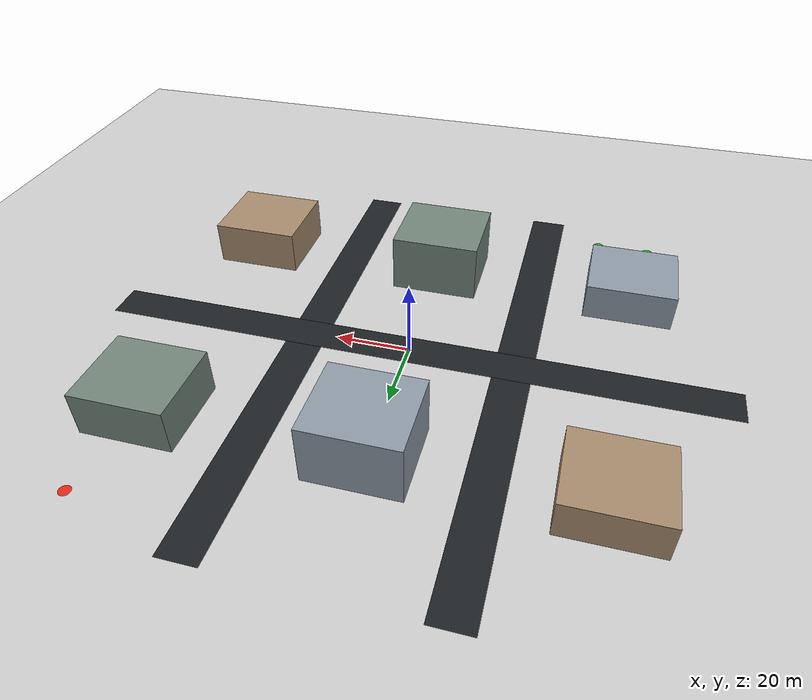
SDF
<?xml version="1.0"?>
<sdf version="1.6"><world name="outdoor_campus">
  <physics name="default_physics" type="ode"><max_step_size>0.004</max_step_size><real_time_factor>1</real_time_factor><real_time_update_rate>250</real_time_update_rate><magnetic_field>6.0e-6 2.3e-5 -4.2e-5</magnetic_field></physics>
  <gravity>0 0 -9.8066</gravity>
  <include><uri>model://sun</uri></include>
  <include><uri>model://ground_plane</uri></include>
  <spherical_coordinates><surface_model>EARTH_WGS84</surface_model><latitude_deg>47.397742</latitude_deg><longitude_deg>8.545594</longitude_deg><elevation>488</elevation><heading_deg>0</heading_deg></spherical_coordinates>
<model name="road_0"><static>true</static><pose>0.000 0.000 0.012 0.000 0.000 0.000</pose><link name="link"><visual name="visual"><cast_shadows>false</cast_shadows><geometry><box><size>170 10 0.02</size></box></geometry><material><ambient>0.12 0.13 0.14 1</ambient><diffuse>0.12 0.13 0.14 1</diffuse></material></visual></link></model>
<model name="road_1"><static>true</static><pose>-28.000 0.000 0.012 0.000 0.000 0.000</pose><link name="link"><visual name="visual"><cast_shadows>false</cast_shadows><geometry><box><size>10 150 0.02</size></box></geometry><material><ambient>0.12 0.13 0.14 1</ambient><diffuse>0.12 0.13 0.14 1</diffuse></material></visual></link></model>
<model name="road_2"><static>true</static><pose>28.000 0.000 0.012 0.000 0.000 0.000</pose><link name="link"><visual name="visual"><cast_shadows>false</cast_shadows><geometry><box><size>10 150 0.02</size></box></geometry><material><ambient>0.12 0.13 0.14 1</ambient><diffuse>0.12 0.13 0.14 1</diffuse></material></visual></link></model>
<model name="building_0"><static>true</static><pose>-55.000 -38.000 5.000 0 0 0</pose><link name="link"><collision name="collision"><geometry><box><size>24 22 10</size></box></geometry></collision><visual name="visual"><geometry><box><size>24 22 10</size></box></geometry><material><ambient>0.55 0.60 0.65 1</ambient><diffuse>0.55 0.60 0.65 1</diffuse></material></visual></link></model>
<model name="building_1"><static>true</static><pose>-55.000 38.000 5.000 0 0 0</pose><link name="link"><collision name="collision"><geometry><box><size>24 22 10</size></box></geometry></collision><visual name="visual"><geometry><box><size>24 22 10</size></box></geometry><material><ambient>0.65 0.54 0.43 1</ambient><diffuse>0.65 0.54 0.43 1</diffuse></material></visual></link></model>
<model name="building_2"><static>true</static><pose>0.000 -38.000 8.000 0 0 0</pose><link name="link"><collision name="collision"><geometry><box><size>24 22 16</size></box></geometry></collision><visual name="visual"><geometry><box><size>24 22 16</size></box></geometry><material><ambient>0.45 0.52 0.48 1</ambient><diffuse>0.45 0.52 0.48 1</diffuse></material></visual></link></model>
<model name="building_3"><static>true</static><pose>0.000 38.000 8.000 0 0 0</pose><link name="link"><collision name="collision"><geometry><box><size>24 22 16</size></box></geometry></collision><visual name="visual"><geometry><box><size>24 22 16</size></box></geometry><material><ambient>0.55 0.60 0.65 1</ambient><diffuse>0.55 0.60 0.65 1</diffuse></material></visual></link></model>
<model name="building_4"><static>true</static><pose>55.000 -38.000 6.000 0 0 0</pose><link name="link"><collision name="collision"><geometry><box><size>24 22 12</size></box></geometry></collision><visual name="visual"><geometry><box><size>24 22 12</size></box></geometry><material><ambient>0.65 0.54 0.43 1</ambient><diffuse>0.65 0.54 0.43 1</diffuse></material></visual></link></model>
<model name="building_5"><static>true</static><pose>55.000 38.000 6.000 0 0 0</pose><link name="link"><collision name="collision"><geometry><box><size>24 22 12</size></box></geometry></collision><visual name="visual"><geometry><box><size>24 22 12</size></box></geometry><material><ambient>0.45 0.52 0.48 1</ambient><diffuse>0.45 0.52 0.48 1</diffuse></material></visual></link></model>
<model name="start_zone"><static>true</static><pose>-60.000 -65.000 -0.009 0.000 0.000 0.000</pose><link name="link"><visual name="visual"><cast_shadows>false</cast_shadows><geometry><cylinder><radius>1.5</radius><length>0.02</length></cylinder></geometry><material><ambient>0.1 0.8 0.1 1</ambient><diffuse>0.1 0.8 0.1 1</diffuse></material></visual></link></model>
<model name="uav_pad_1"><static>true</static><pose>-45.000 -65.000 -0.009 0.000 0.000 0.000</pose><link name="link"><visual name="visual"><cast_shadows>false</cast_shadows><geometry><cylinder><radius>1.5</radius><length>0.02</length></cylinder></geometry><material><ambient>0.1 0.8 0.1 1</ambient><diffuse>0.1 0.8 0.1 1</diffuse></material></visual></link></model>
<model name="uav_pad_2"><static>true</static><pose>-30.000 -65.000 -0.009 0.000 0.000 0.000</pose><link name="link"><visual name="visual"><cast_shadows>false</cast_shadows><geometry><cylinder><radius>1.5</radius><length>0.02</length></cylinder></geometry><material><ambient>0.1 0.8 0.1 1</ambient><diffuse>0.1 0.8 0.1 1</diffuse></material></visual></link></model>
<model name="goal_zone"><static>true</static><pose>60.000 65.000 -0.009 0.000 0.000 0.000</pose><link name="link"><visual name="visual"><cast_shadows>false</cast_shadows><geometry><cylinder><radius>1.5</radius><length>0.02</length></cylinder></geometry><material><ambient>0.9 0.15 0.1 1</ambient><diffuse>0.9 0.15 0.1 1</diffuse></material></visual></link></model>
</world></sdf>
